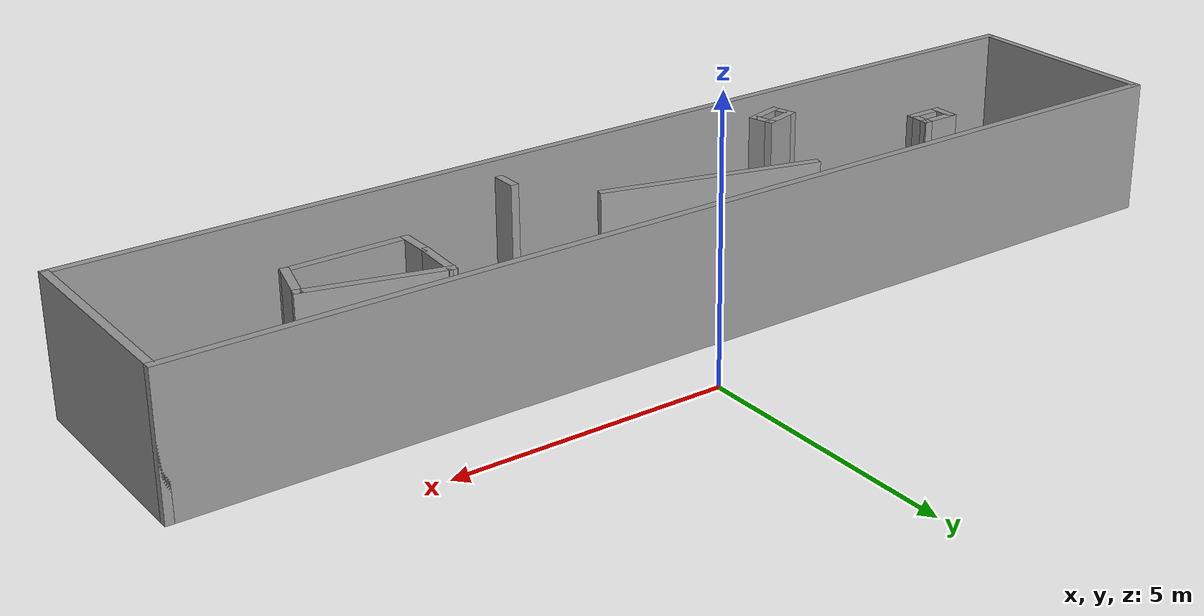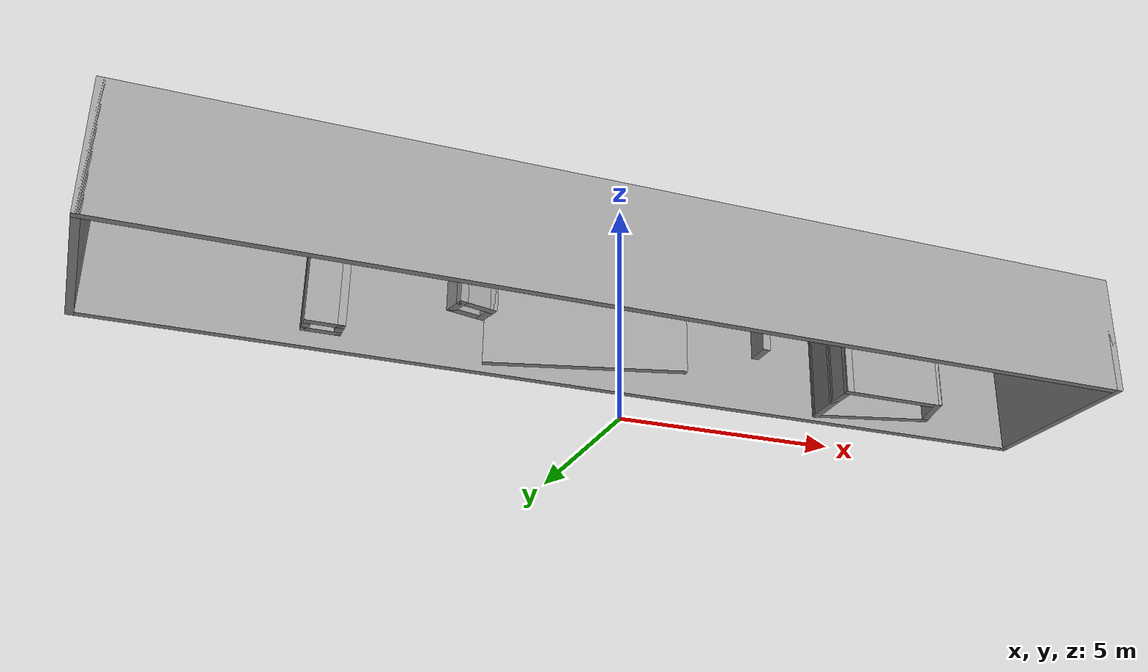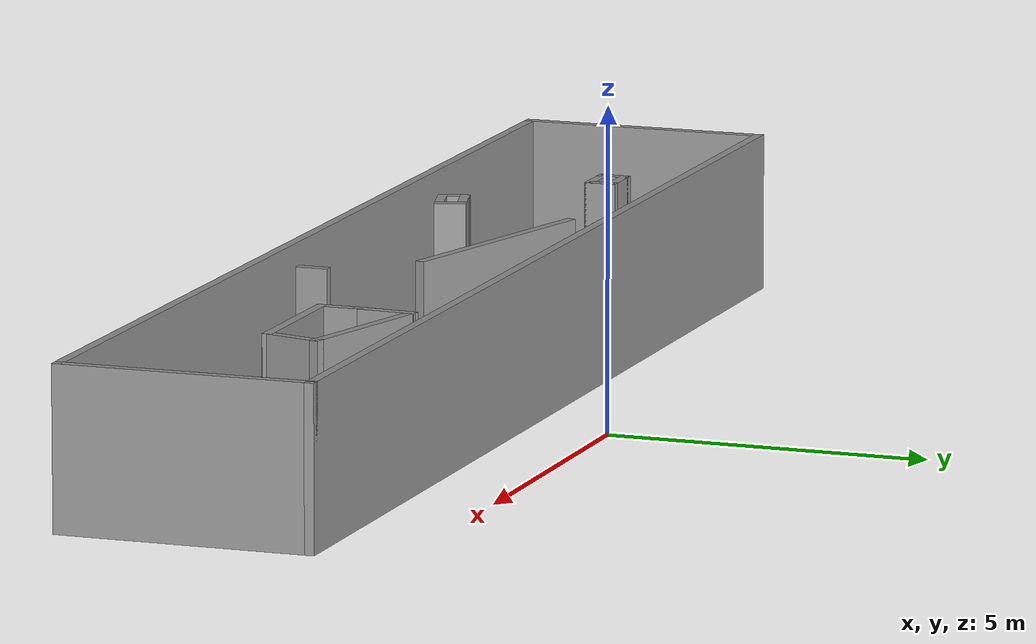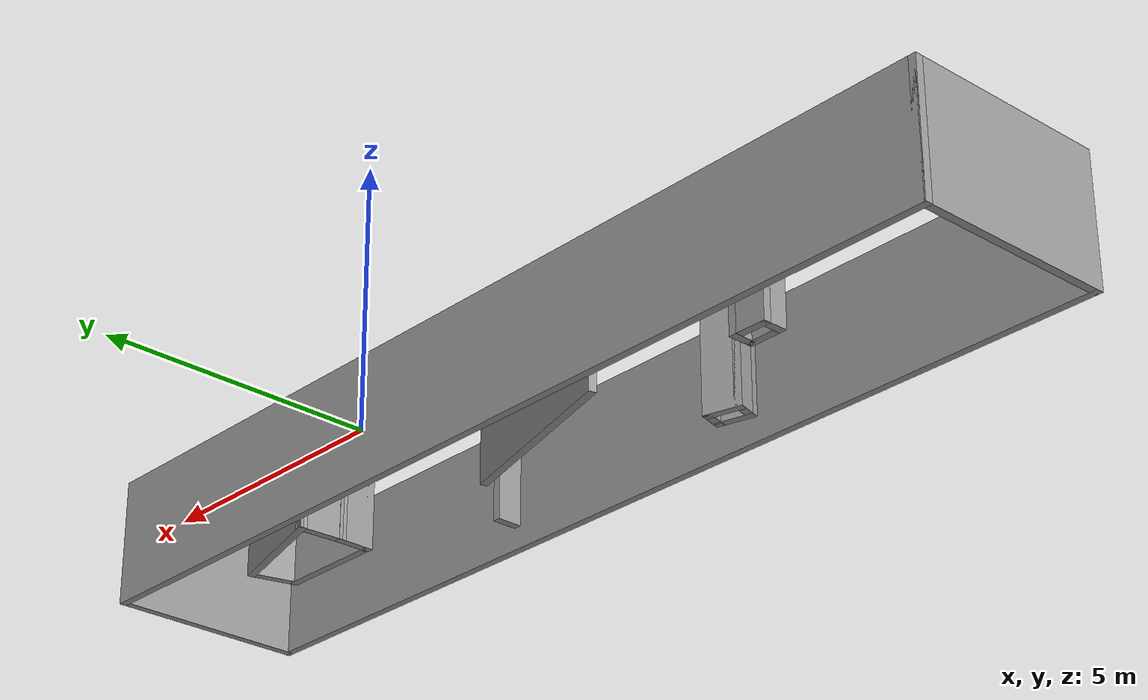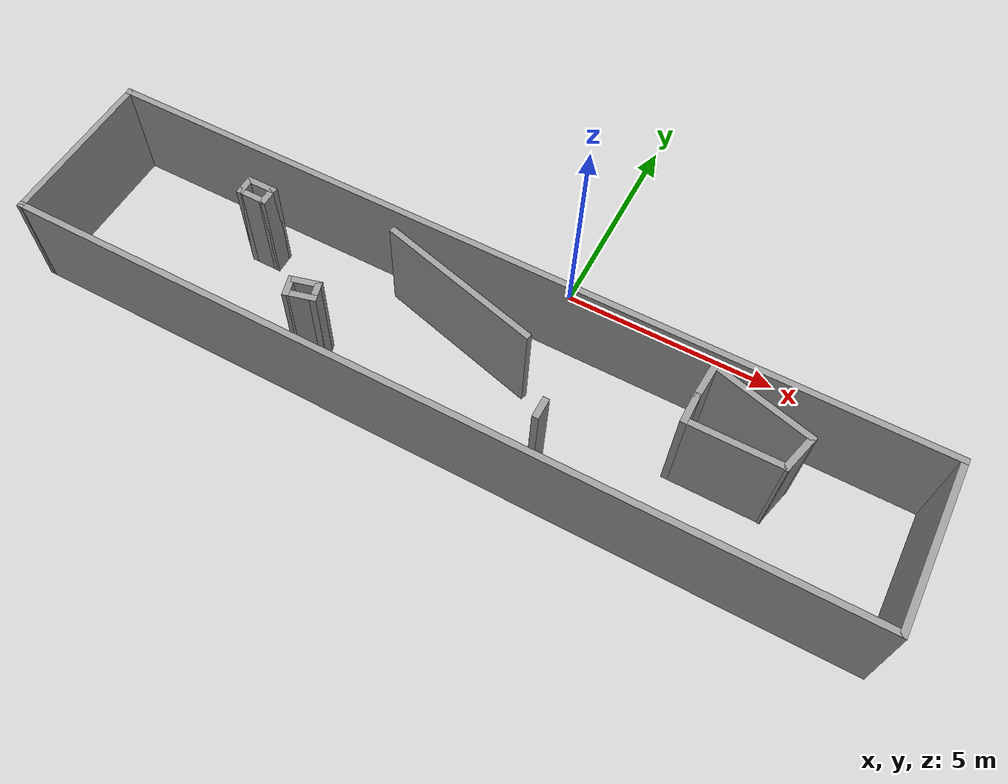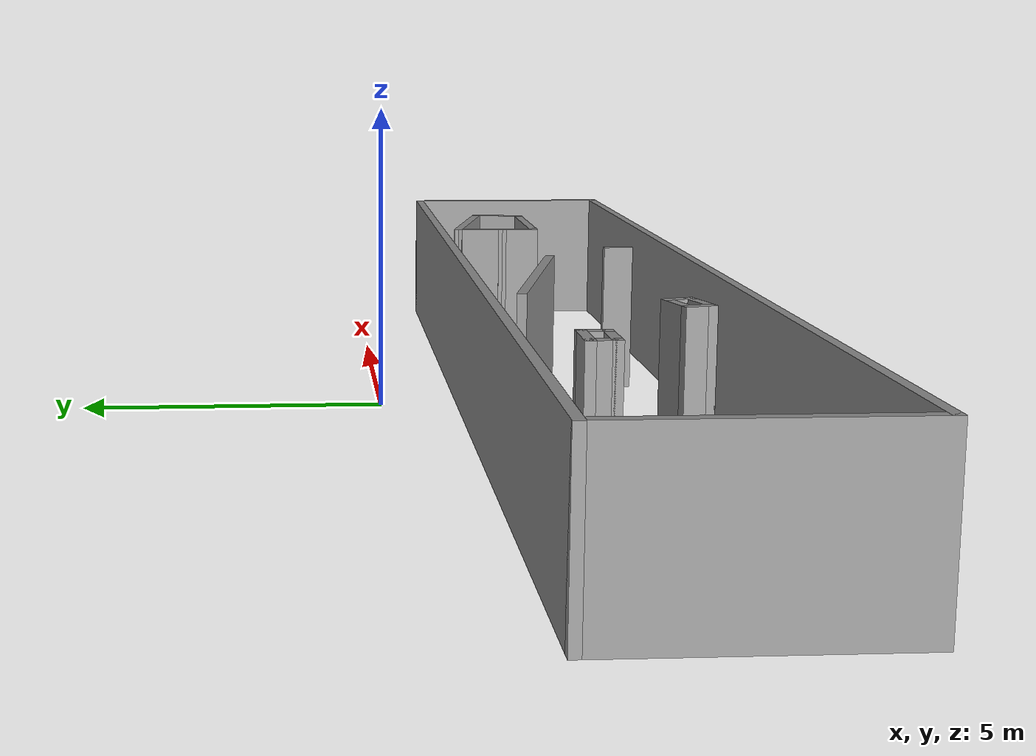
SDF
<?xml version='1.0'?>
<sdf version='1.6'>
  <model name='test'>
    <pose frame=''>-1.102 -3.275 0 0 -0 0</pose>
    <link name='Wall_11'>
      <collision name='Wall_11_Collision'>
        <geometry>
          <box>
            <size>0.5 0.15 2.5</size>
          </box>
        </geometry>
        <pose frame=''>0 0 1.25 0 -0 0</pose>
      </collision>
      <visual name='Wall_11_Visual'>
        <pose frame=''>0 0 1.25 0 -0 0</pose>
        <geometry>
          <box>
            <size>0.5 0.15 2.5</size>
          </box>
        </geometry>
        <material>
          <script>
            <uri>file://media/materials/scripts/gazebo.material</uri>
            <name>Gazebo/Grey</name>
          </script>
          <ambient>1 1 1 1</ambient>
        </material>
        <meta>
          <layer>0</layer>
        </meta>
      </visual>
      <pose frame=''>-5.93912 0.89253 0 0 0 -1.5708</pose>
    </link>
    <link name='Wall_12'>
      <collision name='Wall_12_Collision'>
        <geometry>
          <box>
            <size>0.75 0.15 2.5</size>
          </box>
        </geometry>
        <pose frame=''>0 0 1.25 0 -0 0</pose>
      </collision>
      <visual name='Wall_12_Visual'>
        <pose frame=''>0 0 1.25 0 -0 0</pose>
        <geometry>
          <box>
            <size>0.75 0.15 2.5</size>
          </box>
        </geometry>
        <material>
          <script>
            <uri>file://media/materials/scripts/gazebo.material</uri>
            <name>Gazebo/Grey</name>
          </script>
          <ambient>1 1 1 1</ambient>
        </material>
        <meta>
          <layer>0</layer>
        </meta>
      </visual>
      <pose frame=''>-5.63912 0.71753 0 0 -0 0</pose>
    </link>
    <link name='Wall_13'>
      <collision name='Wall_13_Collision'>
        <geometry>
          <box>
            <size>0.5 0.15 2.5</size>
          </box>
        </geometry>
        <pose frame=''>0 0 1.25 0 -0 0</pose>
      </collision>
      <visual name='Wall_13_Visual'>
        <pose frame=''>0 0 1.25 0 -0 0</pose>
        <geometry>
          <box>
            <size>0.5 0.15 2.5</size>
          </box>
        </geometry>
        <material>
          <script>
            <uri>file://media/materials/scripts/gazebo.material</uri>
            <name>Gazebo/Grey</name>
          </script>
          <ambient>1 1 1 1</ambient>
        </material>
        <meta>
          <layer>0</layer>
        </meta>
      </visual>
      <pose frame=''>-5.33912 0.89253 0 0 -0 1.5708</pose>
    </link>
    <link name='Wall_14'>
      <collision name='Wall_14_Collision'>
        <geometry>
          <box>
            <size>0.75 0.15 2.5</size>
          </box>
        </geometry>
        <pose frame=''>0 0 1.25 0 -0 0</pose>
      </collision>
      <visual name='Wall_14_Visual'>
        <pose frame=''>0 0 1.25 0 -0 0</pose>
        <geometry>
          <box>
            <size>0.75 0.15 2.5</size>
          </box>
        </geometry>
        <material>
          <script>
            <uri>file://media/materials/scripts/gazebo.material</uri>
            <name>Gazebo/Grey</name>
          </script>
          <ambient>1 1 1 1</ambient>
        </material>
        <meta>
          <layer>0</layer>
        </meta>
      </visual>
      <pose frame=''>-5.63912 1.06753 0 0 -0 3.14159</pose>
    </link>
    <link name='Wall_16'>
      <collision name='Wall_16_Collision'>
        <geometry>
          <box>
            <size>0.5 0.15 2.5</size>
          </box>
        </geometry>
        <pose frame=''>0 0 1.25 0 -0 0</pose>
      </collision>
      <visual name='Wall_16_Visual'>
        <pose frame=''>0 0 1.25 0 -0 0</pose>
        <geometry>
          <box>
            <size>0.5 0.15 2.5</size>
          </box>
        </geometry>
        <material>
          <script>
            <uri>file://media/materials/scripts/gazebo.material</uri>
            <name>Gazebo/Grey</name>
          </script>
          <ambient>1 1 1 1</ambient>
        </material>
        <meta>
          <layer>0</layer>
        </meta>
      </visual>
      <pose frame=''>-3.61252 -0.911348 0 0 0 -1.309</pose>
    </link>
    <link name='Wall_17'>
      <collision name='Wall_17_Collision'>
        <geometry>
          <box>
            <size>0.75 0.15 2.5</size>
          </box>
        </geometry>
        <pose frame=''>0 0 1.25 0 -0 0</pose>
      </collision>
      <visual name='Wall_17_Visual'>
        <pose frame=''>0 0 1.25 0 -0 0</pose>
        <geometry>
          <box>
            <size>0.75 0.15 2.5</size>
          </box>
        </geometry>
        <material>
          <script>
            <uri>file://media/materials/scripts/gazebo.material</uri>
            <name>Gazebo/Grey</name>
          </script>
          <ambient>1 1 1 1</ambient>
        </material>
        <meta>
          <layer>0</layer>
        </meta>
      </visual>
      <pose frame=''>-3.27745 -1.00274 0 0 -0 0.261799</pose>
    </link>
    <link name='Wall_18'>
      <collision name='Wall_18_Collision'>
        <geometry>
          <box>
            <size>0.5 0.15 2.5</size>
          </box>
        </geometry>
        <pose frame=''>0 0 1.25 0 -0 0</pose>
      </collision>
      <visual name='Wall_18_Visual'>
        <pose frame=''>0 0 1.25 0 -0 0</pose>
        <geometry>
          <box>
            <size>0.5 0.15 2.5</size>
          </box>
        </geometry>
        <material>
          <script>
            <uri>file://media/materials/scripts/gazebo.material</uri>
            <name>Gazebo/Grey</name>
          </script>
          <ambient>1 1 1 1</ambient>
        </material>
        <meta>
          <layer>0</layer>
        </meta>
      </visual>
      <pose frame=''>-3.03296 -0.756057 0 0 -0 1.8326</pose>
    </link>
    <link name='Wall_19'>
      <collision name='Wall_19_Collision'>
        <geometry>
          <box>
            <size>0.75 0.15 2.5</size>
          </box>
        </geometry>
        <pose frame=''>0 0 1.25 0 -0 0</pose>
      </collision>
      <visual name='Wall_19_Visual'>
        <pose frame=''>0 0 1.25 0 -0 0</pose>
        <geometry>
          <box>
            <size>0.75 0.15 2.5</size>
          </box>
        </geometry>
        <material>
          <script>
            <uri>file://media/materials/scripts/gazebo.material</uri>
            <name>Gazebo/Grey</name>
          </script>
          <ambient>1 1 1 1</ambient>
        </material>
        <meta>
          <layer>0</layer>
        </meta>
      </visual>
      <pose frame=''>-3.36803 -0.664665 0 0 0 -2.87979</pose>
    </link>
    <link name='Wall_2'>
      <collision name='Wall_2_Collision'>
        <geometry>
          <box>
            <size>20 0.15 2.5</size>
          </box>
        </geometry>
        <pose frame=''>0 0 1.25 0 -0 0</pose>
      </collision>
      <visual name='Wall_2_Visual'>
        <pose frame=''>0 0 1.25 0 -0 0</pose>
        <geometry>
          <box>
            <size>20 0.15 2.5</size>
          </box>
        </geometry>
        <material>
          <script>
            <uri>file://media/materials/scripts/gazebo.material</uri>
            <name>Gazebo/Grey</name>
          </script>
          <ambient>1 1 1 1</ambient>
        </material>
        <meta>
          <layer>0</layer>
        </meta>
      </visual>
      <pose frame=''>0 1.925 0 0 -0 0</pose>
    </link>
    <link name='Wall_21'>
      <collision name='Wall_21_Collision'>
        <geometry>
          <box>
            <size>4 0.15 2.5</size>
          </box>
        </geometry>
        <pose frame=''>0 0 1.25 0 -0 0</pose>
      </collision>
      <visual name='Wall_21_Visual'>
        <pose frame=''>0 0 1.25 0 -0 0</pose>
        <geometry>
          <box>
            <size>4 0.15 2.5</size>
          </box>
        </geometry>
        <material>
          <script>
            <uri>file://media/materials/scripts/gazebo.material</uri>
            <name>Gazebo/Grey</name>
          </script>
          <ambient>1 1 1 1</ambient>
        </material>
        <meta>
          <layer>0</layer>
        </meta>
      </visual>
      <pose frame=''>-0.551287 0.903896 0 0 0 -0.261799</pose>
    </link>
    <link name='Wall_23'>
      <collision name='Wall_23_Collision'>
        <geometry>
          <box>
            <size>0.5 0.15 2.5</size>
          </box>
        </geometry>
        <pose frame=''>0 0 1.25 0 -0 0</pose>
      </collision>
      <visual name='Wall_23_Visual'>
        <pose frame=''>0 0 1.25 0 -0 0</pose>
        <geometry>
          <box>
            <size>0.5 0.15 2.5</size>
          </box>
        </geometry>
        <material>
          <script>
            <uri>file://media/materials/scripts/gazebo.material</uri>
            <name>Gazebo/Grey</name>
          </script>
          <ambient>1 1 1 1</ambient>
        </material>
        <meta>
          <layer>0</layer>
        </meta>
      </visual>
      <pose frame=''>2.31923 -0.962937 0 0 0 -1.5708</pose>
    </link>
    <link name='Wall_25'>
      <collision name='Wall_25_Collision'>
        <geometry>
          <box>
            <size>0.75 0.15 2.5</size>
          </box>
        </geometry>
        <pose frame=''>0 0 1.25 0 -0 0</pose>
      </collision>
      <visual name='Wall_25_Visual'>
        <pose frame=''>0 0 1.25 0 -0 0</pose>
        <geometry>
          <box>
            <size>0.75 0.15 2.5</size>
          </box>
        </geometry>
        <material>
          <script>
            <uri>file://media/materials/scripts/gazebo.material</uri>
            <name>Gazebo/Grey</name>
          </script>
          <ambient>1 1 1 1</ambient>
        </material>
        <meta>
          <layer>0</layer>
        </meta>
      </visual>
      <pose frame=''>4.88951 0.448146 0 0 0 -1.5708</pose>
    </link>
    <link name='Wall_26'>
      <collision name='Wall_26_Collision'>
        <geometry>
          <box>
            <size>2.25 0.15 2.5</size>
          </box>
        </geometry>
        <pose frame=''>0 0 1.25 0 -0 0</pose>
      </collision>
      <visual name='Wall_26_Visual'>
        <pose frame=''>0 0 1.25 0 -0 0</pose>
        <geometry>
          <box>
            <size>2.25 0.15 2.5</size>
          </box>
        </geometry>
        <material>
          <script>
            <uri>file://media/materials/scripts/gazebo.material</uri>
            <name>Gazebo/Grey</name>
          </script>
          <ambient>1 1 1 1</ambient>
        </material>
        <meta>
          <layer>0</layer>
        </meta>
      </visual>
      <pose frame=''>5.93951 0.148147 0 0 -0 0</pose>
    </link>
    <link name='Wall_27'>
      <collision name='Wall_27_Collision'>
        <geometry>
          <box>
            <size>1 0.15 2.5</size>
          </box>
        </geometry>
        <pose frame=''>0 0 1.25 0 -0 0</pose>
      </collision>
      <visual name='Wall_27_Visual'>
        <pose frame=''>0 0 1.25 0 -0 0</pose>
        <geometry>
          <box>
            <size>1 0.15 2.5</size>
          </box>
        </geometry>
        <material>
          <script>
            <uri>file://media/materials/scripts/gazebo.material</uri>
            <name>Gazebo/Grey</name>
          </script>
          <ambient>1 1 1 1</ambient>
        </material>
        <meta>
          <layer>0</layer>
        </meta>
      </visual>
      <pose frame=''>7.0995 0.558665 0 0 -0 1.309</pose>
    </link>
    <link name='Wall_28'>
      <collision name='Wall_28_Collision'>
        <geometry>
          <box>
            <size>2.5 0.15 2.5</size>
          </box>
        </geometry>
        <pose frame=''>0 0 1.25 0 -0 0</pose>
      </collision>
      <visual name='Wall_28_Visual'>
        <pose frame=''>0 0 1.25 0 -0 0</pose>
        <geometry>
          <box>
            <size>2.5 0.15 2.5</size>
          </box>
        </geometry>
        <material>
          <script>
            <uri>file://media/materials/scripts/gazebo.material</uri>
            <name>Gazebo/Grey</name>
          </script>
          <ambient>1 1 1 1</ambient>
        </material>
        <meta>
          <layer>0</layer>
        </meta>
      </visual>
      <pose frame=''>6.07454 1.2733 0 0 -0 2.87979</pose>
    </link>
    <link name='Wall_29'>
      <collision name='Wall_29_Collision'>
        <geometry>
          <box>
            <size>0.980772 0.15 2.5</size>
          </box>
        </geometry>
        <pose frame=''>0 0 1.25 0 -0 0</pose>
      </collision>
      <visual name='Wall_29_Visual'>
        <pose frame=''>0 0 1.25 0 -0 0</pose>
        <geometry>
          <box>
            <size>0.980772 0.15 2.5</size>
          </box>
        </geometry>
        <material>
          <script>
            <uri>file://media/materials/scripts/gazebo.material</uri>
            <name>Gazebo/Grey</name>
          </script>
          <ambient>1 1 1 1</ambient>
        </material>
        <meta>
          <layer>0</layer>
        </meta>
      </visual>
      <pose frame=''>4.91454 1.16278 0 0 0 -1.6311</pose>
    </link>
    <link name='Wall_6'>
      <collision name='Wall_6_Collision'>
        <geometry>
          <box>
            <size>4 0.15 2.5</size>
          </box>
        </geometry>
        <pose frame=''>0 0 1.25 0 -0 0</pose>
      </collision>
      <visual name='Wall_6_Visual'>
        <pose frame=''>0 0 1.25 0 -0 0</pose>
        <geometry>
          <box>
            <size>4 0.15 2.5</size>
          </box>
        </geometry>
        <material>
          <script>
            <uri>file://media/materials/scripts/gazebo.material</uri>
            <name>Gazebo/Grey</name>
          </script>
          <ambient>1 1 1 1</ambient>
        </material>
        <meta>
          <layer>0</layer>
        </meta>
      </visual>
      <pose frame=''>-9.925 0 0 0 0 -1.5708</pose>
    </link>
    <link name='Wall_8'>
      <collision name='Wall_8_Collision'>
        <geometry>
          <box>
            <size>20 0.15 2.5</size>
          </box>
        </geometry>
        <pose frame=''>0 0 1.25 0 -0 0</pose>
      </collision>
      <visual name='Wall_8_Visual'>
        <pose frame=''>0 0 1.25 0 -0 0</pose>
        <geometry>
          <box>
            <size>20 0.15 2.5</size>
          </box>
        </geometry>
        <material>
          <script>
            <uri>file://media/materials/scripts/gazebo.material</uri>
            <name>Gazebo/Grey</name>
          </script>
          <ambient>1 1 1 1</ambient>
        </material>
        <meta>
          <layer>0</layer>
        </meta>
      </visual>
      <pose frame=''>0 -1.925 0 0 -0 0</pose>
    </link>
    <link name='Wall_9'>
      <collision name='Wall_9_Collision'>
        <geometry>
          <box>
            <size>4 0.15 2.5</size>
          </box>
        </geometry>
        <pose frame=''>0 0 1.25 0 -0 0</pose>
      </collision>
      <visual name='Wall_9_Visual'>
        <pose frame=''>0 0 1.25 0 -0 0</pose>
        <geometry>
          <box>
            <size>4 0.15 2.5</size>
          </box>
        </geometry>
        <material>
          <script>
            <uri>file://media/materials/scripts/gazebo.material</uri>
            <name>Gazebo/Grey</name>
          </script>
          <ambient>1 1 1 1</ambient>
        </material>
        <meta>
          <layer>0</layer>
        </meta>
      </visual>
      <pose frame=''>9.925 0 0 0 -0 1.5708</pose>
    </link>
    <static>1</static>
  </model>
</sdf>
